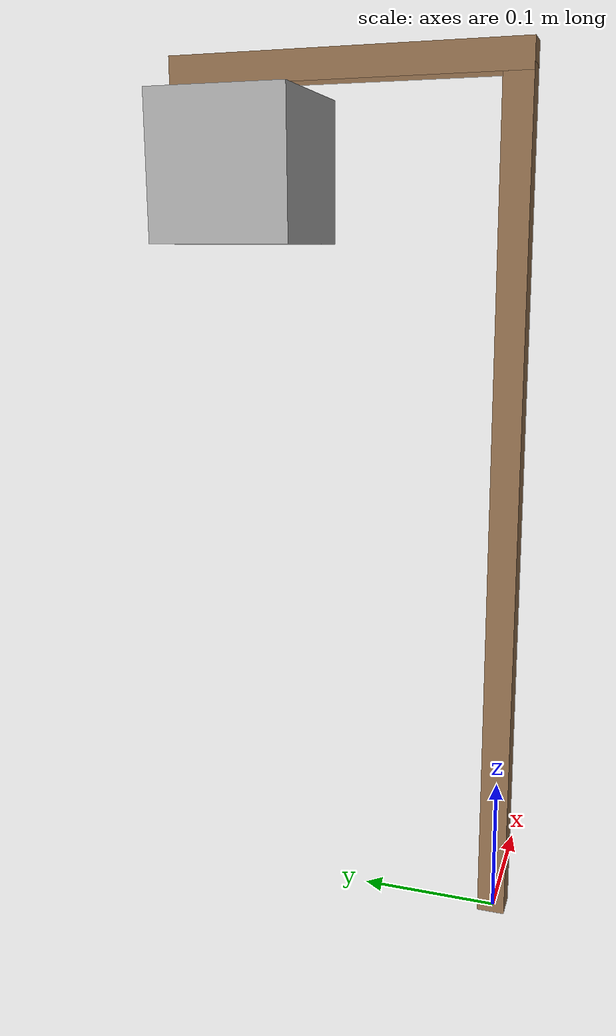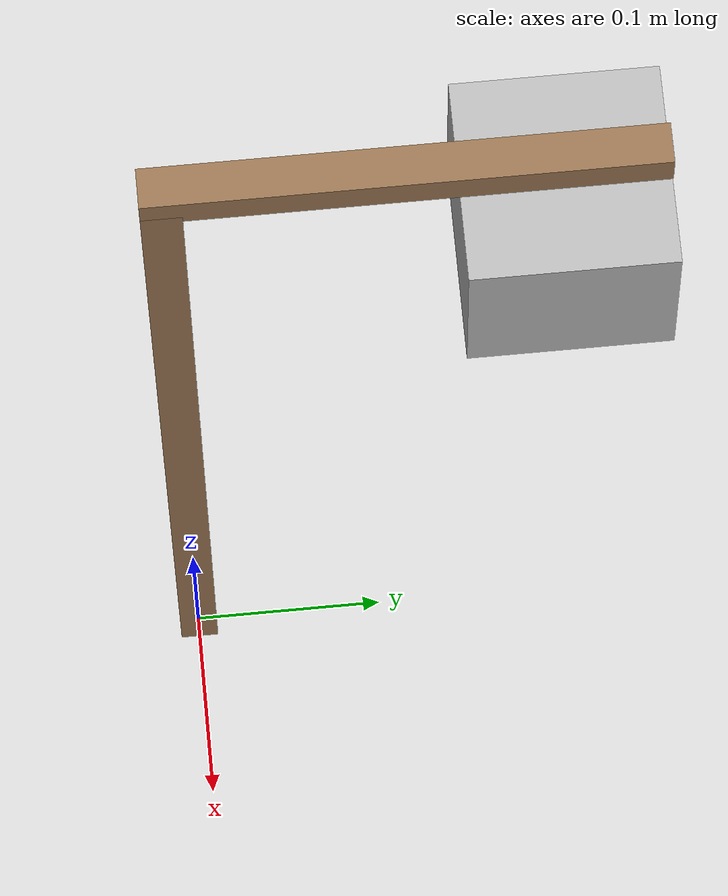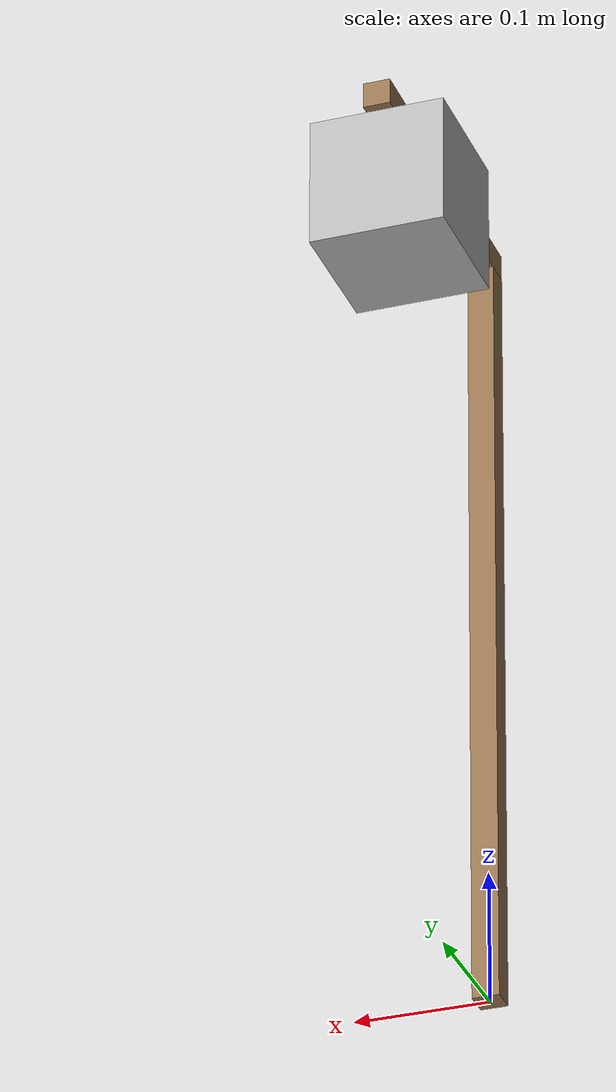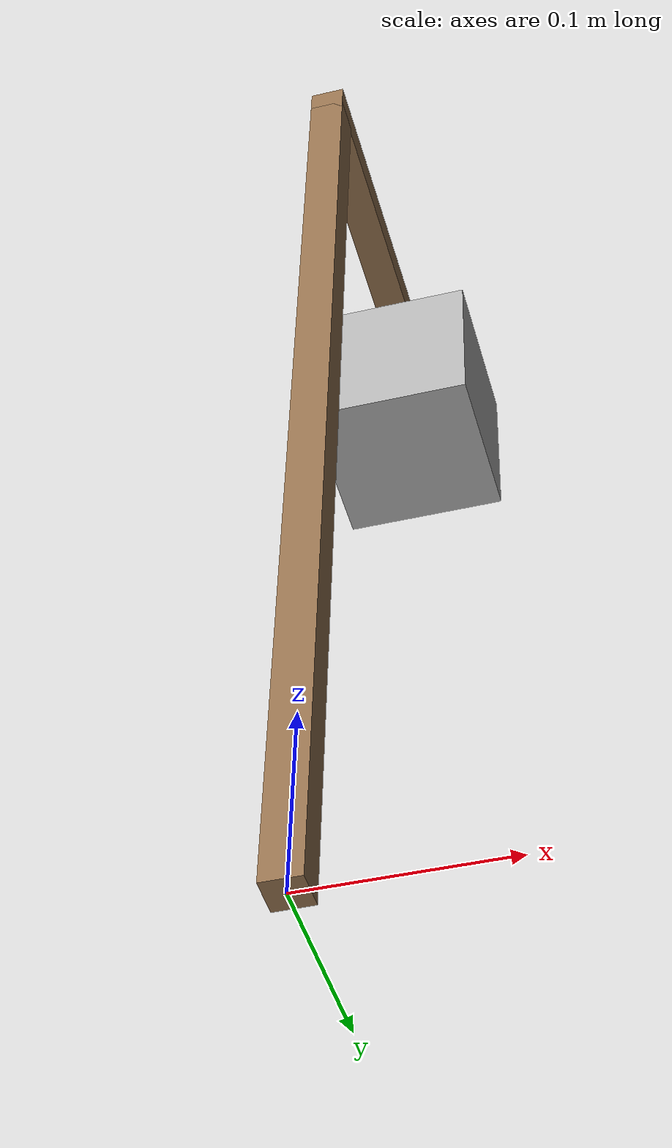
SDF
<?xml version="1.0" ?>
<sdf version="1.5">
  <model name="overhead_camera">
    <static>true</static>
    <link name="vertical">
      <pose frame=''>0 0 0.3 0 0 0</pose>
      <inertial>
        <mass>5</mass>
        <inertia>
          <ixx>5</ixx>
          <ixy>0</ixy>
          <ixz>0</ixz>
          <iyy>5</iyy>
          <iyz>0</iyz>
          <izz>5</izz>
        </inertia>
      </inertial>

      <collision name="collision">
        <geometry>
          <box>
            <size>0.02 0.02 0.6</size>
          </box>
        </geometry>
        <surface>
          <contact>
            <poissons_ratio>0.15</poissons_ratio>
            <elastic_modulus>1</elastic_modulus>
            <ode>
              <kp>100000</kp>
              <kd>100</kd>
              <max_vel>1.0</max_vel>
              <min_depth>0.001</min_depth>
            </ode>
          </contact>
          <friction>
            <torsional>
              <coefficient>1.0</coefficient>
              <use_patch_radius>0</use_patch_radius>
              <surface_radius>0.01</surface_radius>
            </torsional>
          </friction>
        </surface>
      </collision>

      <visual name="visual">
        <geometry>
          <box>
            <size>0.02 0.02 0.6</size>
          </box>
        </geometry>
        <material>
          <ambient>0.4 0.26 0.12 1</ambient>
          <diffuse>0.6 0.46 0.32 1</diffuse>
        </material>
      </visual>
    </link>

    <link name="horizontal">
      <pose>0.0 0.115 0.605 0.0 1.5707 1.5707</pose>
        <inertial>
        <mass>5</mass>
        <inertia>
          <ixx>5</ixx>
          <ixy>0</ixy>
          <ixz>0</ixz>
          <iyy>5</iyy>
          <iyz>0</iyz>
          <izz>5</izz>
        </inertia>
      </inertial>

      <collision name="collision">
        <geometry>
          <box>
            <size>0.02 0.02 0.25</size>
          </box>
        </geometry>
        <surface>
          <contact>
            <poissons_ratio>0.15</poissons_ratio>
            <elastic_modulus>1</elastic_modulus>
            <ode>
              <kp>100000</kp>
              <kd>100</kd>
              <max_vel>1.0</max_vel>
              <min_depth>0.001</min_depth>
            </ode>
          </contact>
          <friction>
            <torsional>
              <coefficient>1.0</coefficient>
              <use_patch_radius>0</use_patch_radius>
              <surface_radius>0.01</surface_radius>
            </torsional>
          </friction>
        </surface>
      </collision>

      <visual name="visual">
        <geometry>
          <box>
            <size>0.02 0.02 0.25</size>
          </box>
        </geometry>
        <material>
          <ambient>0.4 0.26 0.12 1</ambient>
          <diffuse>0.6 0.46 0.32 1</diffuse>
        </material>
      </visual>
    </link>

    <include>
      <uri>model://gazebo_camera</uri>
      <link name="gazebo_camera"/>
      <pose>0 0.19 0.54 0 1.5707 1.5707</pose>
    </include>

  </model>
</sdf>

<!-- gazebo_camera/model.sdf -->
<sdf version="1.5">
  <model name="archival_camera">
    <pose>0 0 0.05 0 0 0</pose>
    <link name="archival_camera_link">
      <inertial>
        <mass>0.1</mass>
        <inertia>
          <ixx>0.000166667</ixx>
          <iyy>0.000166667</iyy>
          <izz>0.000166667</izz>
        </inertia>
      </inertial>
      <collision name="collision">
        <geometry>
          <box>
            <size>0.1 0.1 0.1</size>
          </box>
        </geometry>
      </collision>
      <visual name="visual">
        <geometry>
          <box>
            <size>0.1 0.1 0.1</size>
          </box>
        </geometry>
      </visual>
      <sensor name="camera" type="camera">
        <always_on>1</always_on>
        <update_rate>30</update_rate>
        <visualize>true</visualize>

        <camera>
          <horizontal_fov>1.047</horizontal_fov>
          <image>
            <width>3840</width>
            <height>2160</height>
          </image>
          <clip>
            <near>0.1</near>
            <far>100</far>
          </clip>
        </camera>

        <!-- plugin to echo gazebo topic messages on ROS topic -->
        <plugin name="camera_controller" filename="libgazebo_ros_camera.so">
          <alwaysOn>true</alwaysOn>
          <updateRate>10</updateRate>
          <cameraName>archival_camera</cameraName>
          <imageTopicName>image_raw</imageTopicName>
          <cameraInfoTopicName>camera_info</cameraInfoTopicName>
          <frameName>archival_camera_link</frameName>
          <hackBaseline>0.07</hackBaseline>
          <distortionK1>0.0</distortionK1>
          <distortionK2>0.0</distortionK2>
          <distortionK3>0.0</distortionK3>
          <distortionT1>0.0</distortionT1>
          <distortionT2>0.0</distortionT2>
        </plugin>

      </sensor>
    </link>
  </model>
</sdf>
